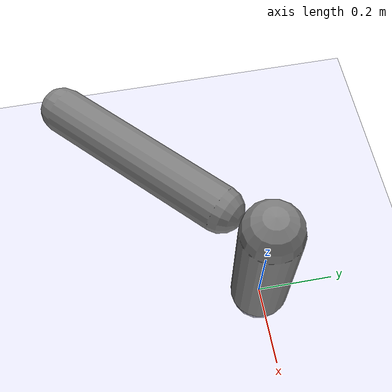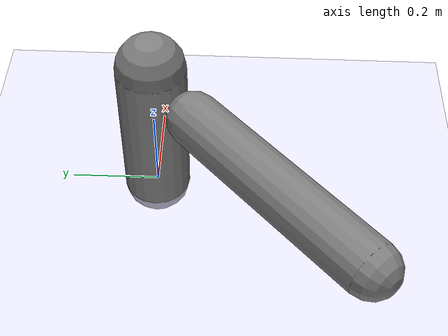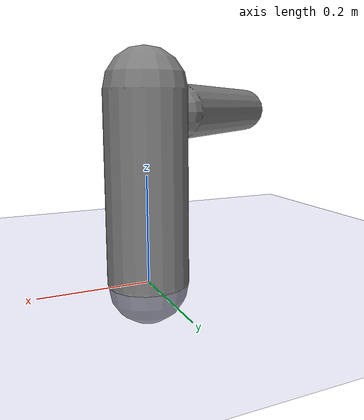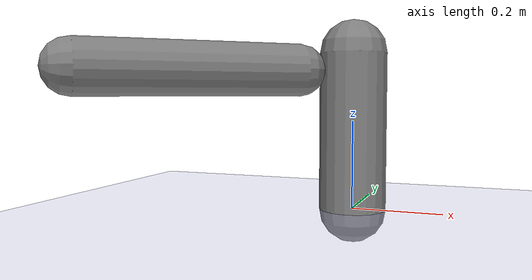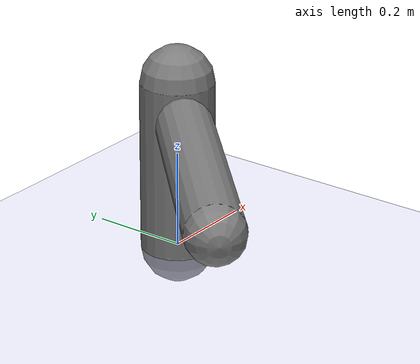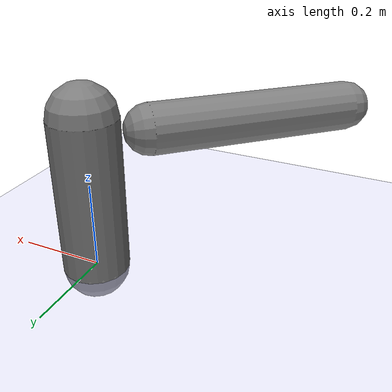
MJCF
<?xml version='1.0' encoding='UTF-8'?>
<mujoco model="robot_model">
  <worldbody>
    <light name="light" pos="0 -3 10" dir="0 0.5 -1" diffuse=".8 .8 .8" specular="0.1 0.1 0.1"/>
    <geom name="floor" type="plane" size="10.0 10.0 0.1" pos="0 0 0" rgba="0.8 0.8 1 1" contype="2" conaffinity="1"/>
    <body name="limb0" pos="0 0 0">
      <geom name="limb0_geom" type="capsule" fromto="0 0 0 0 0 0.3553880659872404" size="0.07556982267602654" density="508.1395759950241" contype="1" conaffinity="2"/>
      <site type="sphere" size="0.01" name="limb0_site0" pos="-0.09871707428683861 -0.09438574938553108 0.31406318695301333" quat="0.7071067811865476 0.48866201574206874 -0.5110865233704546 0.0"/>
      <freejoint name="limb0_root"/>
      <body name="limb1" pos="-0.09871707428683861 -0.09438574938553108 0.31406318695301333" quat="0.7071067811865476 0.48866201574206874 -0.5110865233704546 0.0">
        <geom name="limb1_geom" type="capsule" fromto="0 0 0 0 0 0.47385153610623176" size="0.05700883760009965" density="994.9291144398621" contype="1" conaffinity="2"/>
        <joint name="joint_limb0_limb1_0" type="hinge" axis="1 0 0" range="-120.0 120.0" damping="5.0"/>
      </body>
    </body>
  </worldbody>
  <actuator>
    <position name="position_actuator_joint_limb0_limb1_0" joint="joint_limb0_limb1_0" gear="1.95277099085166" inheritrange="1" forcerange="-27.928726827998858 27.928726827998858" forcelimited="true" kp="100.0"/>
  </actuator>
  <contact>
    <pair geom1="limb0_geom" geom2="limb1_geom"/>
  </contact>
</mujoco>
